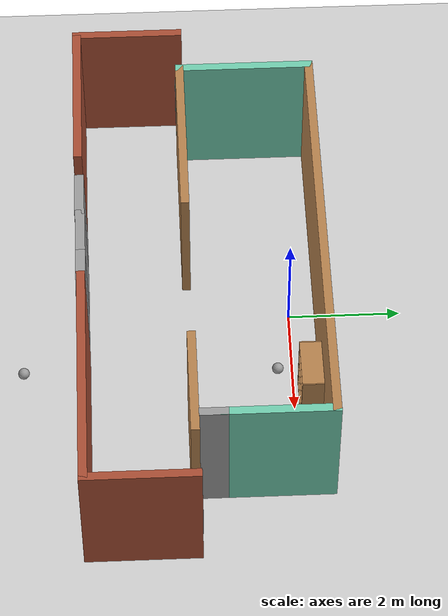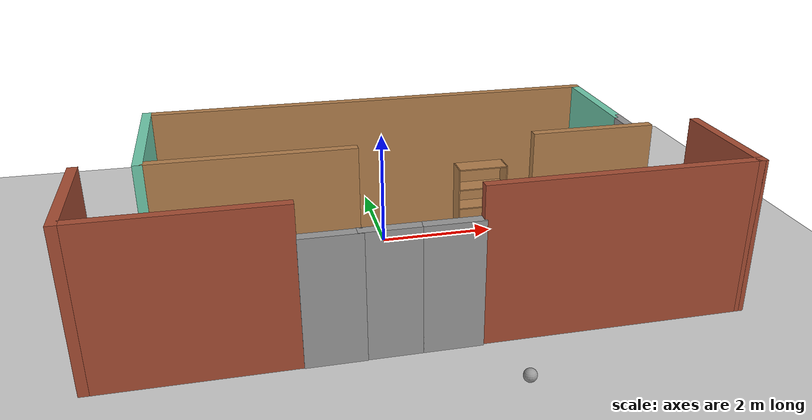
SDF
<sdf version="1.6">
 <world name="default">
  <plugin name="hello" filename="libhello.so"/>
  <light name="sun" type="directional">
   <pose>0 0 10 0 -0 0</pose>
   <diffuse>0.8 0.8 0.8 1</diffuse>
   <specular>0.2 0.2 0.2 1</specular>
   <attenuation>
    <range>1000</range>
    <constant>0.9</constant>
    <linear>0.01</linear>
    <quadratic>0.001</quadratic>
   </attenuation>
   <direction>-0.5 0.1 -0.9</direction>
  </light>
  <model name="ground_plane">
   <static>1</static>
   <link name="link">
    <collision name="collision">
     <geometry><plane><normal>0 0 1</normal><size>100 100</size></plane></geometry>
     <surface>
      <contact><collide_bitmask>65535</collide_bitmask></contact>
      <friction><ode><mu>100</mu><mu2>50</mu2></ode></friction>
     </surface>
    </collision>
    <visual name="visual">
     <cast_shadows>0</cast_shadows>
     <geometry><plane><normal>0 0 1</normal><size>100 100</size></plane></geometry>
     <material>
      <script><uri>file://media/materials/scripts/gazebo.material</uri><name>Gazebo/Grey</name></script>
     </material>
    </visual>
   </link>
  </model>
  <gravity>0 0 -9.8</gravity>
  <magnetic_field>6e-06 2.3e-05 -4.2e-05</magnetic_field>
  <atmosphere type="adiabatic"/>
  <physics name="default_physics" default="0" type="ode">
   <max_step_size>0.001</max_step_size>
   <real_time_factor>1</real_time_factor>
   <real_time_update_rate>1000</real_time_update_rate>
  </physics>
  <scene><ambient>0.4 0.4 0.4 1</ambient><background>0.7 0.7 0.7 1</background><shadows>1</shadows></scene>
  <spherical_coordinates>
   <surface_model>EARTH_WGS84</surface_model>
   <latitude_deg>0</latitude_deg>
   <longitude_deg>0</longitude_deg>
   <elevation>0</elevation>
   <heading_deg>0</heading_deg>
  </spherical_coordinates>
  <model name="build_for_final_roomba">
   <pose>0.08 -1.565 0 0 -0 0</pose>
   <link name="Door_0">
    <collision name="Door_0_Collision">
     <geometry><box><size>0.9 0.17 2</size></box></geometry>
     <pose>0 0 1 0 -0 0</pose>
    </collision>
    <visual name="Door_0_Visual">
     <pose>0 0 1 0 -0 0</pose>
     <geometry><box><size>0.9 0.17 2</size></box></geometry>
     <material>
      <script><uri>file://media/materials/scripts/gazebo.material</uri><name>Gazebo/Grey</name></script>
     </material>
    </visual>
    <pose>-1.46 -2.105 0 0 -0 0</pose>
   </link>
   <link name="Door_1">
    <collision name="Door_1_Collision">
     <geometry><box><size>0.9 0.17 2</size></box></geometry>
     <pose>0 0 1 0 -0 0</pose>
    </collision>
    <visual name="Door_1_Visual">
     <pose>0 0 1 0 -0 0</pose>
     <geometry><box><size>0.9 0.17 2</size></box></geometry>
     <material>
      <script><uri>file://media/materials/scripts/gazebo.material</uri><name>Gazebo/Grey</name></script>
     </material>
    </visual>
    <pose>-0.65 -2.095 0 0 -0 0</pose>
   </link>
   <link name="Door_2">
    <collision name="Door_2_Collision">
     <geometry><box><size>0.9 0.17 2</size></box></geometry>
     <pose>0 0 1 0 -0 0</pose>
    </collision>
    <visual name="Door_2_Visual">
     <pose>0 0 1 0 -0 0</pose>
     <geometry><box><size>0.9 0.17 2</size></box></geometry>
     <material>
      <script><uri>file://media/materials/scripts/gazebo.material</uri><name>Gazebo/Grey</name></script>
     </material>
    </visual>
    <pose>0.24 -2.095 0 0 -0 0</pose>
   </link>
   <link name="Wall_1">
    <collision name="Wall_1_Collision">
     <geometry><box><size>3 0.15 2.5</size></box></geometry>
     <pose>0 0 1.25 0 -0 0</pose>
    </collision>
    <visual name="Wall_1_Visual">
     <pose>0 0 1.25 0 -0 0</pose>
     <geometry><box><size>3 0.15 2.5</size></box></geometry>
     <material>
      <script><uri>file://media/materials/scripts/gazebo.material</uri><name>Gazebo/Bricks</name></script>
      <ambient>1 1 1 1</ambient>
     </material>
     <meta><layer>0</layer></meta>
    </visual>
    <pose>-3.405 -2.105 0 0 -0 3.14159</pose>
   </link>
   <link name="Wall_10">
    <collision name="Wall_10_Collision">
     <geometry><box><size>2 0.15 2.5</size></box></geometry>
     <pose>0 0 1.25 0 -0 0</pose>
    </collision>
    <visual name="Wall_10_Visual">
     <pose>0 0 1.25 0 -0 0</pose>
     <geometry><box><size>2 0.15 2.5</size></box></geometry>
     <material>
      <script><uri>file://media/materials/scripts/gazebo.material</uri><name>Gazebo/Wood</name></script>
      <ambient>1 1 1 1</ambient>
     </material>
     <meta><layer>0</layer></meta>
    </visual>
    <pose>3.005 -0.235 0 0 -0 3.14159</pose>
   </link>
   <link name="Wall_13">
    <collision name="Wall_13_Collision">
     <geometry><box><size>2.5 0.15 2.5</size></box></geometry>
     <pose>0 0 1.25 0 -0 0</pose>
    </collision>
    <visual name="Wall_13_Visual">
     <pose>0 0 1.25 0 -0 0</pose>
     <geometry><box><size>2.5 0.15 2.5</size></box></geometry>
     <material>
      <script><uri>file://media/materials/scripts/gazebo.material</uri><name>Gazebo/Grey</name></script>
      <ambient>0.435294 0.796078 0.67451 1</ambient>
     </material>
     <meta><layer>0</layer></meta>
    </visual>
    <pose>-3.95 0.93 0 0 -0 1.5708</pose>
   </link>
   <link name="Wall_14">
    <collision name="Wall_14_Collision">
     <geometry><box><size>7.75 0.15 2.5</size></box></geometry>
     <pose>0 0 1.25 0 -0 0</pose>
    </collision>
    <visual name="Wall_14_Visual">
     <pose>0 0 1.25 0 -0 0</pose>
     <geometry><box><size>7.75 0.15 2.5</size></box></geometry>
     <material>
      <script><uri>file://media/materials/scripts/gazebo.material</uri><name>Gazebo/Wood</name></script>
      <ambient>1 1 1 1</ambient>
     </material>
     <meta><layer>0</layer></meta>
    </visual>
    <pose>-0.15 2.105 0 0 -0 0</pose>
   </link>
   <link name="Wall_15">
    <collision name="Wall_15_Collision">
     <geometry><box><size>2 0.15 2.5</size></box></geometry>
     <pose>0 0 1.25 0 -0 0</pose>
    </collision>
    <visual name="Wall_15_Visual">
     <pose>0 0 1.25 0 -0 0</pose>
     <geometry><box><size>2 0.15 2.5</size></box></geometry>
     <material>
      <script><uri>file://media/materials/scripts/gazebo.material</uri><name>Gazebo/Grey</name></script>
      <ambient>0.435294 0.796078 0.67451 1</ambient>
     </material>
     <meta><layer>0</layer></meta>
    </visual>
    <pose>3.65 1.18 0 0 0 -1.5708</pose>
   </link>
   <link name="Wall_16">
    <collision name="Wall_16_Collision">
     <geometry><box><size>0.5 0.15 2.5</size></box></geometry>
     <pose>0 0 1.25 0 -0 0</pose>
    </collision>
    <visual name="Wall_16_Visual">
     <pose>0 0 1.25 0 -0 0</pose>
     <geometry><box><size>0.5 0.15 2.5</size></box></geometry>
     <material>
      <script><uri>file://media/materials/scripts/gazebo.material</uri><name>Gazebo/Grey</name></script>
      <ambient>1 1 1 1</ambient>
     </material>
     <meta><layer>0</layer></meta>
    </visual>
    <pose>3.65 0.08 0 0 0 -1.5708</pose>
   </link>
   <link name="Wall_3">
    <collision name="Wall_3_Collision">
     <geometry><box><size>4.25 0.15 2.5</size></box></geometry>
     <pose>0 0 1.25 0 -0 0</pose>
    </collision>
    <visual name="Wall_3_Visual">
     <pose>0 0 1.25 0 -0 0</pose>
     <geometry><box><size>4.25 0.15 2.5</size></box></geometry>
     <material>
      <script><uri>file://media/materials/scripts/gazebo.material</uri><name>Gazebo/Bricks</name></script>
      <ambient>1 1 1 1</ambient>
     </material>
     <meta><layer>0</layer></meta>
    </visual>
    <pose>2.78 -2.075 0 0 -0 0</pose>
   </link>
   <link name="Wall_4">
    <collision name="Wall_4_Collision">
     <geometry><box><size>2 0.15 2.5</size></box></geometry>
     <pose>0 0 1.25 0 -0 0</pose>
    </collision>
    <visual name="Wall_4_Visual">
     <pose>0 0 1.25 0 -0 0</pose>
     <geometry><box><size>2 0.15 2.5</size></box></geometry>
     <material>
      <script><uri>file://media/materials/scripts/gazebo.material</uri><name>Gazebo/Bricks</name></script>
      <ambient>1 1 1 1</ambient>
     </material>
     <meta><layer>0</layer></meta>
    </visual>
    <pose>4.83 -1.15 0 0 -0 1.5708</pose>
   </link>
   <link name="Wall_6">
    <collision name="Wall_6_Collision">
     <geometry><box><size>2 0.15 2.5</size></box></geometry>
     <pose>0 0 1.25 0 -0 0</pose>
    </collision>
    <visual name="Wall_6_Visual">
     <pose>0 0 1.25 0 -0 0</pose>
     <geometry><box><size>2 0.15 2.5</size></box></geometry>
     <material>
      <script><uri>file://media/materials/scripts/gazebo.material</uri><name>Gazebo/Bricks</name></script>
      <ambient>1 1 1 1</ambient>
     </material>
     <meta><layer>0</layer></meta>
    </visual>
    <pose>-4.83 -1.18 0 0 -0 1.5708</pose>
   </link>
   <link name="Wall_8">
    <collision name="Wall_8_Collision">
     <geometry><box><size>3.25 0.15 2.5</size></box></geometry>
     <pose>0 0 1.25 0 -0 0</pose>
    </collision>
    <visual name="Wall_8_Visual">
     <pose>0 0 1.25 0 -0 0</pose>
     <geometry><box><size>3.25 0.15 2.5</size></box></geometry>
     <material>
      <script><uri>file://media/materials/scripts/gazebo.material</uri><name>Gazebo/Wood</name></script>
      <ambient>1 1 1 1</ambient>
     </material>
     <meta><layer>0</layer></meta>
    </visual>
    <pose>-2.4 -0.245 0 0 -0 0</pose>
   </link>
   <link name="Window_1">
    <collision name="Window_1_Collision">
     <geometry><box><size>0.8 0.17 0.8</size></box></geometry>
     <pose>0 0 0.4 0 -0 0</pose>
    </collision>
    <visual name="Window_1_Visual">
     <pose>0 0 0.4 0 -0 0</pose>
     <geometry><box><size>0.8 0.17 0.8</size></box></geometry>
     <material>
      <script><uri>file://media/materials/scripts/gazebo.material</uri><name>Gazebo/Grey</name></script>
     </material>
    </visual>
    <pose>-4.38 -0.235 0.5 0 -0 0</pose>
   </link>
   <link name="Window_2">
    <collision name="Window_2_Collision">
     <geometry><box><size>0.8 0.17 0.8</size></box></geometry>
     <pose>0 0 0.4 0 -0 0</pose>
    </collision>
    <visual name="Window_2_Visual">
     <pose>0 0 0.4 0 -0 0</pose>
     <geometry><box><size>0.8 0.17 0.8</size></box></geometry>
     <material>
      <script><uri>file://media/materials/scripts/gazebo.material</uri><name>Gazebo/Grey</name></script>
     </material>
    </visual>
    <pose>4.35 -0.225 0.5 0 -0 0</pose>
   </link>
   <static>1</static>
  </model>
  <model name="cabinet">
   <static>1</static>
   <link name="cabinet_bottom_plate">
    <inertial>
     <pose>0 0 -1 0 -0 0</pose>
     <inertia><ixx>2.05</ixx><ixy>0</ixy><ixz>0</ixz><iyy>2.05</iyy><iyz>0</iyz><izz>2.05</izz></inertia>
     <mass>25</mass>
    </inertial>
    <collision name="cabinet_bottom_plate_geom">
     <pose>0 0 0.01 0 -0 0</pose>
     <geometry><box><size>0.45 0.45 0.02</size></box></geometry>
    </collision>
    <visual name="cabinet_bottom_plate_geom_visual">
     <pose>0 0 0.01 0 -0 0</pose>
     <geometry><box><size>0.45 0.45 0.02</size></box></geometry>
     <material>
      <script><uri>file://media/materials/scripts/gazebo.material</uri><name>Gazebo/Wood</name></script>
     </material>
    </visual>
    <collision name="cabinet_bottom_plate_geom_cabinet_back_plate">
     <pose>0.235 0 0.51 0 -0 0</pose>
     <geometry><box><size>0.02 0.45 1.02</size></box></geometry>
    </collision>
    <visual name="cabinet_bottom_plate_geom_cabinet_back_plate_visual">
     <pose>0.235 0 0.51 0 -0 0</pose>
     <geometry><box><size>0.02 0.45 1.02</size></box></geometry>
     <material>
      <script><uri>file://media/materials/scripts/gazebo.material</uri><name>Gazebo/Wood</name></script>
     </material>
    </visual>
    <collision name="cabinet_bottom_plate_geom_cabinet_left_plate">
     <pose>0 0.235 0.51 0 -0 0</pose>
     <geometry><box><size>0.45 0.02 1.02</size></box></geometry>
    </collision>
    <visual name="cabinet_bottom_plate_geom_cabinet_left_plate_visual">
     <pose>0 0.235 0.51 0 -0 0</pose>
     <geometry><box><size>0.45 0.02 1.02</size></box></geometry>
     <material>
      <script><uri>file://media/materials/scripts/gazebo.material</uri><name>Gazebo/Wood</name></script>
     </material>
    </visual>
    <collision name="cabinet_bottom_plate_geom_cabinet_middle_plate">
     <pose>0 0 0.51 0 -0 0</pose>
     <geometry><box><size>0.45 0.45 0.02</size></box></geometry>
    </collision>
    <visual name="cabinet_bottom_plate_geom_cabinet_middle_plate_visual">
     <pose>0 0 0.51 0 -0 0</pose>
     <geometry><box><size>0.45 0.45 0.02</size></box></geometry>
     <material>
      <script><uri>file://media/materials/scripts/gazebo.material</uri><name>Gazebo/Wood</name></script>
     </material>
    </visual>
    <collision name="cabinet_bottom_plate_geom_cabinet_right_plate">
     <pose>0 -0.235 0.51 0 -0 0</pose>
     <geometry><box><size>0.45 0.02 1.02</size></box></geometry>
    </collision>
    <visual name="cabinet_bottom_plate_geom_cabinet_right_plate_visual">
     <pose>0 -0.235 0.51 0 -0 0</pose>
     <geometry><box><size>0.45 0.02 1.02</size></box></geometry>
     <material>
      <script><uri>file://media/materials/scripts/gazebo.material</uri><name>Gazebo/Wood</name></script>
     </material>
    </visual>
    <collision name="cabinet_bottom_plate_geom_cabinet_top_plate">
     <pose>0 0 1.01 0 -0 0</pose>
     <geometry><box><size>0.45 0.45 0.02</size></box></geometry>
    </collision>
    <visual name="cabinet_bottom_plate_geom_cabinet_top_plate_visual">
     <pose>0 0 1.01 0 -0 0</pose>
     <geometry><box><size>0.45 0.45 0.02</size></box></geometry>
     <material>
      <script><uri>file://media/materials/scripts/gazebo.material</uri><name>Gazebo/Wood</name></script>
     </material>
    </visual>
   </link>
   <pose>4.46016 -3.33033 0 0 -0 0</pose>
  </model>
  <model name="bookshelf">
   <static>1</static>
   <link name="link">
    <inertial><mass>1</mass></inertial>
    <collision name="back">
     <pose>0 0.005 0.6 0 -0 0</pose>
     <geometry><box><size>0.9 0.01 1.2</size></box></geometry>
    </collision>
    <visual name="visual1">
     <pose>0 0.005 0.6 0 -0 0</pose>
     <geometry><box><size>0.9 0.01 1.2</size></box></geometry>
     <material>
      <script><uri>file://media/materials/scripts/gazebo.material</uri><name>Gazebo/Wood</name></script>
     </material>
    </visual>
    <collision name="left_side">
     <pose>0.45 -0.195 0.6 0 -0 0</pose>
     <geometry><box><size>0.02 0.4 1.2</size></box></geometry>
    </collision>
    <visual name="visual2">
     <pose>0.45 -0.195 0.6 0 -0 0</pose>
     <geometry><box><size>0.02 0.4 1.2</size></box></geometry>
     <material>
      <script><uri>file://media/materials/scripts/gazebo.material</uri><name>Gazebo/Wood</name></script>
     </material>
    </visual>
    <collision name="right_side">
     <pose>-0.45 -0.195 0.6 0 -0 0</pose>
     <geometry><box><size>0.02 0.4 1.2</size></box></geometry>
    </collision>
    <visual name="visual3">
     <pose>-0.45 -0.195 0.6 0 -0 0</pose>
     <geometry><box><size>0.02 0.4 1.2</size></box></geometry>
     <material>
      <script><uri>file://media/materials/scripts/gazebo.material</uri><name>Gazebo/Wood</name></script>
     </material>
    </visual>
    <collision name="bottom">
     <pose>0 -0.195 0.03 0 -0 0</pose>
     <geometry><box><size>0.88 0.4 0.06</size></box></geometry>
    </collision>
    <visual name="visual4">
     <pose>0 -0.195 0.03 0 -0 0</pose>
     <geometry><box><size>0.88 0.4 0.06</size></box></geometry>
     <material>
      <script><uri>file://media/materials/scripts/gazebo.material</uri><name>Gazebo/Wood</name></script>
     </material>
    </visual>
    <collision name="top">
     <pose>0 -0.195 1.19 0 -0 0</pose>
     <geometry><box><size>0.88 0.4 0.02</size></box></geometry>
    </collision>
    <visual name="visual5">
     <pose>0 -0.195 1.19 0 -0 0</pose>
     <geometry><box><size>0.88 0.4 0.02</size></box></geometry>
     <material>
      <script><uri>file://media/materials/scripts/gazebo.material</uri><name>Gazebo/Wood</name></script>
     </material>
    </visual>
    <collision name="low_shelf">
     <pose>0 -0.195 0.43 0 -0 0</pose>
     <geometry><box><size>0.88 0.4 0.02</size></box></geometry>
    </collision>
    <visual name="visual6">
     <pose>0 -0.195 0.43 0 -0 0</pose>
     <geometry><box><size>0.88 0.4 0.02</size></box></geometry>
     <material>
      <script><uri>file://media/materials/scripts/gazebo.material</uri><name>Gazebo/Wood</name></script>
     </material>
    </visual>
    <collision name="high_shelf">
     <pose>0 -0.195 0.8 0 -0 0</pose>
     <geometry><box><size>0.88 0.4 0.02</size></box></geometry>
    </collision>
    <visual name="visual7">
     <pose>0 -0.195 0.8 0 -0 0</pose>
     <geometry><box><size>0.88 0.4 0.02</size></box></geometry>
     <material>
      <script><uri>file://media/materials/scripts/gazebo.material</uri><name>Gazebo/Wood</name></script>
     </material>
    </visual>
   </link>
   <pose>1.88917 0.478269 0 0 -0 0</pose>
  </model>
  <model name="my_ball">
   <link name="link_0">
    <inertial>
     <mass>1</mass>
     <inertia><ixx>0.1</ixx><ixy>0</ixy><ixz>0</ixz><iyy>0.1</iyy><iyz>0</iyz><izz>0.1</izz></inertia>
    </inertial>
    <visual name="visual">
     <geometry><sphere><radius>0.1</radius></sphere></geometry>
     <material>
      <lighting>1</lighting>
      <script><uri>file://media/materials/scripts/gazebo.material</uri><name>Gazebo/Grey</name></script>
      <shader type="pixel"><normal_map>__default__</normal_map></shader>
      <ambient>1 1 1 1</ambient>
      <diffuse>1 1 1 1</diffuse>
      <specular>1 1 1 1</specular>
      <emissive>1 1 1 1</emissive>
     </material>
    </visual>
    <collision name="collision">
     <geometry><sphere><radius>0.1</radius></sphere></geometry>
     <surface>
      <friction>
       <ode><mu>1</mu><mu2>1</mu2><fdir1>0 0 0</fdir1><slip1>0</slip1><slip2>0</slip2></ode>
       <torsional>
        <coefficient>1</coefficient>
        <patch_radius>0</patch_radius>
        <surface_radius>0</surface_radius>
        <use_patch_radius>1</use_patch_radius>
        <ode><slip>0</slip></ode>
       </torsional>
      </friction>
      <bounce><restitution_coefficient>0</restitution_coefficient><threshold>1e+06</threshold></bounce>
      <contact>
       <collide_without_contact>0</collide_without_contact>
       <collide_without_contact_bitmask>1</collide_without_contact_bitmask>
       <collide_bitmask>1</collide_bitmask>
       <ode>
        <soft_cfm>0</soft_cfm>
        <soft_erp>0.2</soft_erp>
        <kp>1e+13</kp>
        <kd>1</kd>
        <max_vel>0.01</max_vel>
        <min_depth>0</min_depth>
       </ode>
       <bullet>
        <split_impulse>1</split_impulse>
        <split_impulse_penetration_threshold>-0.01</split_impulse_penetration_threshold>
        <soft_cfm>0</soft_cfm>
        <soft_erp>0.2</soft_erp>
        <kp>1e+13</kp>
        <kd>1</kd>
       </bullet>
      </contact>
     </surface>
    </collision>
   </link>
   <static>0</static>
   <pose>1.12553 -4.74383 0.1 0 -0 0</pose>
  </model>
  <model name="my_ball_clone">
   <link name="link_0">
    <inertial>
     <mass>1</mass>
     <inertia><ixx>0.1</ixx><ixy>0</ixy><ixz>0</ixz><iyy>0.1</iyy><iyz>0</iyz><izz>0.1</izz></inertia>
    </inertial>
    <visual name="visual">
     <geometry><sphere><radius>0.1</radius></sphere></geometry>
     <material>
      <lighting>1</lighting>
      <script><uri>file://media/materials/scripts/gazebo.material</uri><name>Gazebo/Grey</name></script>
      <shader type="pixel"><normal_map>__default__</normal_map></shader>
      <ambient>1 1 1 1</ambient>
      <diffuse>1 1 1 1</diffuse>
      <specular>1 1 1 1</specular>
      <emissive>1 1 1 1</emissive>
     </material>
    </visual>
    <collision name="collision">
     <geometry><sphere><radius>0.1</radius></sphere></geometry>
     <surface>
      <friction>
       <ode><mu>1</mu><mu2>1</mu2><fdir1>0 0 0</fdir1><slip1>0</slip1><slip2>0</slip2></ode>
       <torsional>
        <coefficient>1</coefficient>
        <patch_radius>0</patch_radius>
        <surface_radius>0</surface_radius>
        <use_patch_radius>1</use_patch_radius>
        <ode><slip>0</slip></ode>
       </torsional>
      </friction>
      <bounce><restitution_coefficient>0</restitution_coefficient><threshold>1e+06</threshold></bounce>
      <contact>
       <collide_without_contact>0</collide_without_contact>
       <collide_without_contact_bitmask>1</collide_without_contact_bitmask>
       <collide_bitmask>1</collide_bitmask>
       <ode>
        <soft_cfm>0</soft_cfm>
        <soft_erp>0.2</soft_erp>
        <kp>1e+13</kp>
        <kd>1</kd>
        <max_vel>0.01</max_vel>
        <min_depth>0</min_depth>
       </ode>
       <bullet>
        <split_impulse>1</split_impulse>
        <split_impulse_penetration_threshold>-0.01</split_impulse_penetration_threshold>
        <soft_cfm>0</soft_cfm>
        <soft_erp>0.2</soft_erp>
        <kp>1e+13</kp>
        <kd>1</kd>
       </bullet>
      </contact>
     </surface>
    </collision>
   </link>
   <static>0</static>
   <pose>1.19354 -0.256094 0.1 0 -0 0</pose>
  </model>
 </world>
</sdf>
